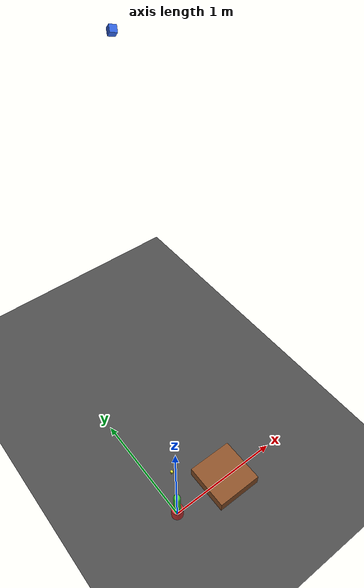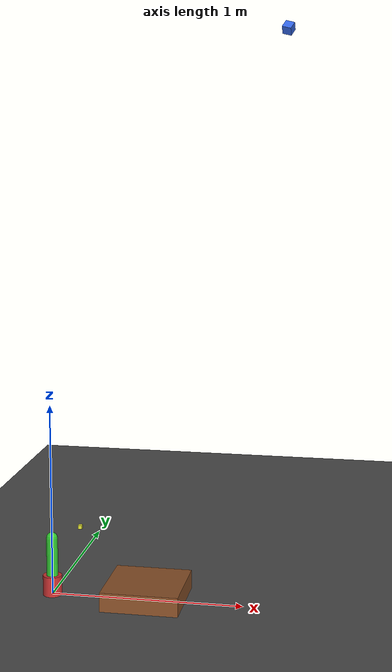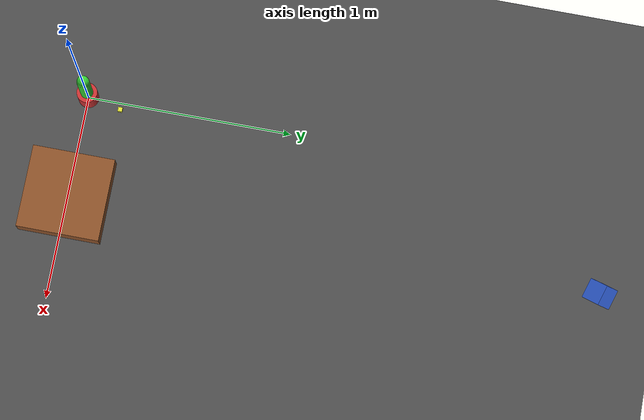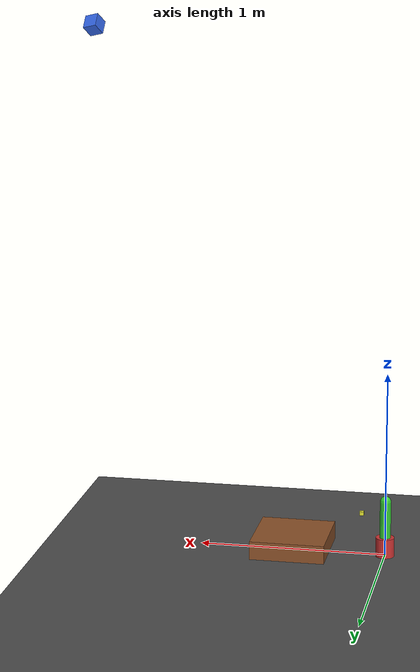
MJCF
<mujoco model="object_state_scene_test">
  <compiler angle="radian"/>
  <option timestep="0.002" gravity="0 0 0" solver="Newton" iterations="20"/>

  <worldbody>
    <geom name="floor" type="plane" size="5 5 0.1" pos="0 0 0" rgba="0.3 0.3 0.3 1"/>

    <!-- Reference frame. Static (no joint), so it must not appear in the
         published set even though everything is measured against it. -->
    <body name="ref_frame" pos="0.1 0.2 0.3" quat="0.5 -0.5 -0.5 0.5">
      <geom type="box" size="0.01 0.01 0.01" contype="0" conaffinity="0"
            rgba="0.9 0.9 0.2 1"/>
    </body>

    <!-- Robot: hinge joints with actuators. Never an object. -->
    <body name="arm_base" pos="0 0 0">
      <joint name="j1" type="hinge" axis="0 0 1" range="-3.14 3.14"/>
      <inertial pos="0 0 0.1" mass="1.0" diaginertia="0.01 0.01 0.01"/>
      <geom type="cylinder" size="0.05 0.1" contype="0" conaffinity="0"
            rgba="0.8 0.2 0.2 1"/>
      <body name="arm_link" pos="0 0 0.2">
        <joint name="j2" type="hinge" axis="0 1 0" range="-1.57 1.57"/>
        <inertial pos="0 0 0.1" mass="0.5" diaginertia="0.005 0.005 0.005"/>
        <geom type="capsule" size="0.03 0.1" contype="0" conaffinity="0"
              rgba="0.2 0.8 0.2 1"/>
      </body>
    </body>

    <!-- Static prop (a work table stands in for this in real scenes). Has
         geoms and a name but no joint, so it is not an object. -->
    <body name="static_prop" pos="0.5 0 0.05">
      <geom type="box" size="0.2 0.2 0.05" rgba="0.55 0.32 0.16 1"/>
    </body>

    <!-- The one hand-placed free body. -->
    <body name="loose_box" pos="1.0 2.0 3.0"
          quat="0.76506218 0.29689154 -0.21567241 0.52916981">
      <freejoint name="loose_box_free"/>
      <inertial pos="0 0 0" mass="0.2" diaginertia="0.001 0.001 0.001"/>
      <geom type="box" size="0.03 0.03 0.03" contype="0" conaffinity="0"
            rgba="0.2 0.4 0.9 1"/>
    </body>
  </worldbody>

  <actuator>
    <position name="m1" joint="j1" kp="100" ctrlrange="-3.14 3.14"/>
    <position name="m2" joint="j2" kp="100" ctrlrange="-1.57 1.57"/>
  </actuator>
</mujoco>
